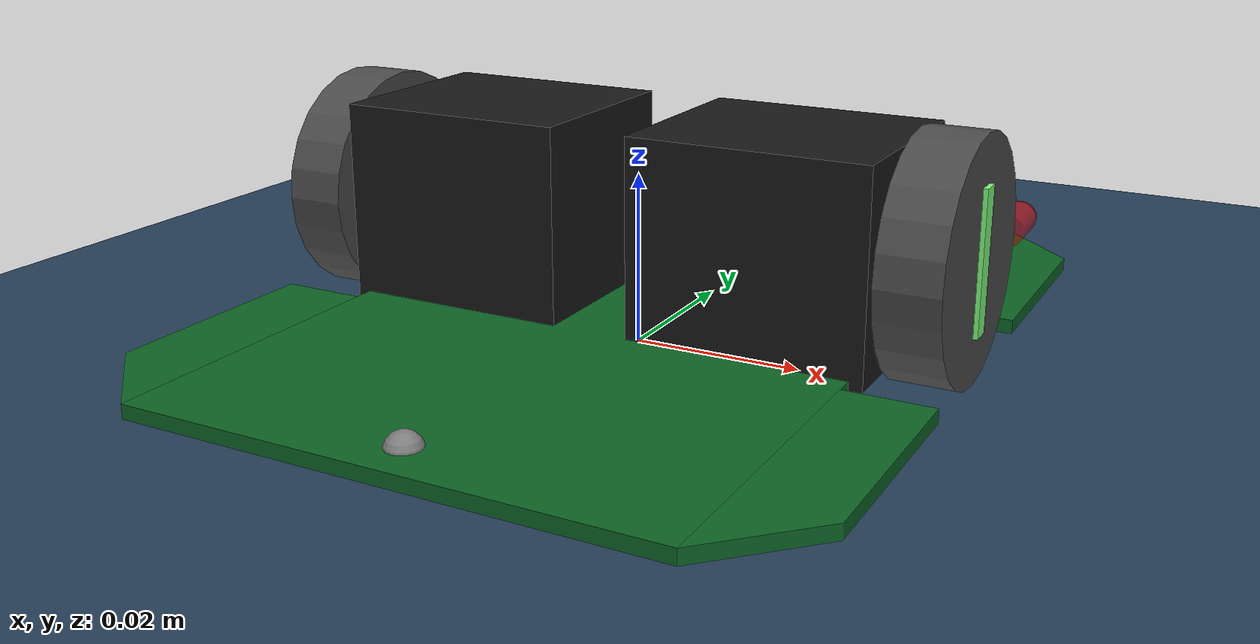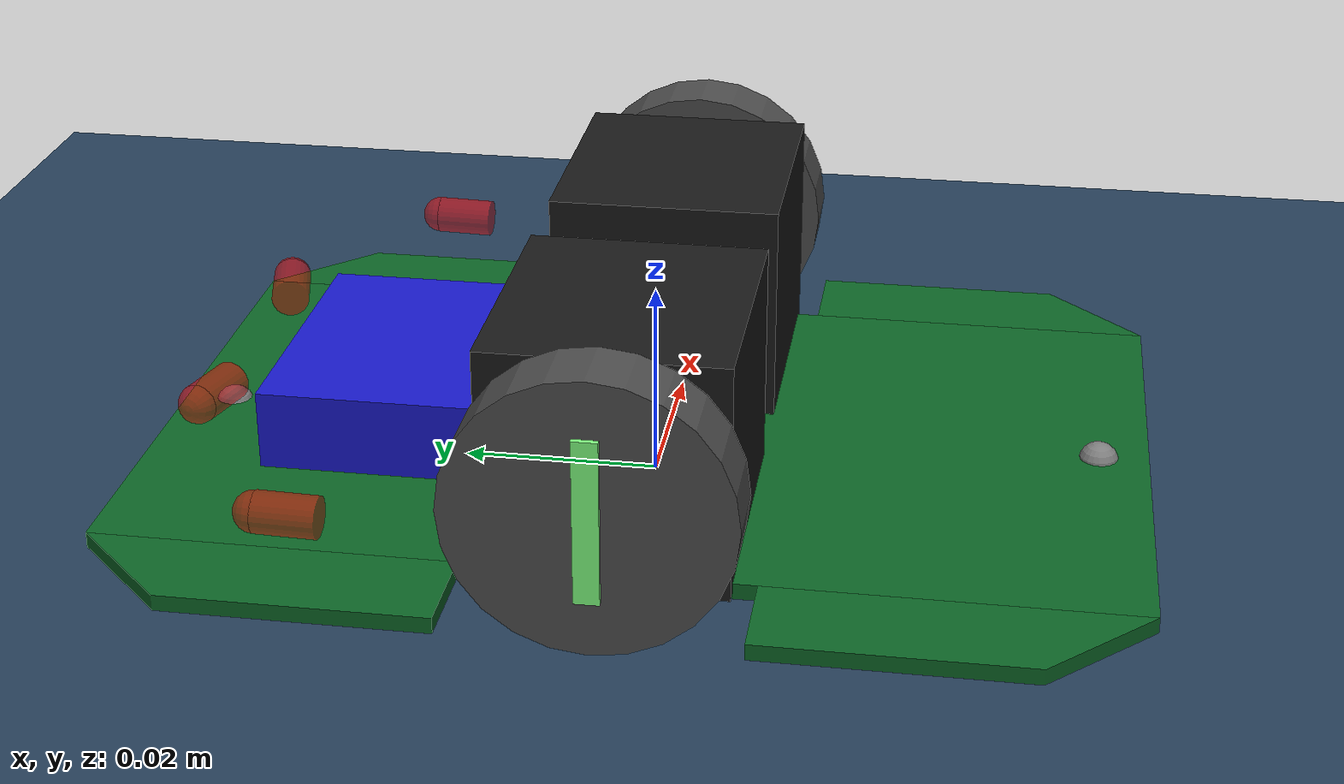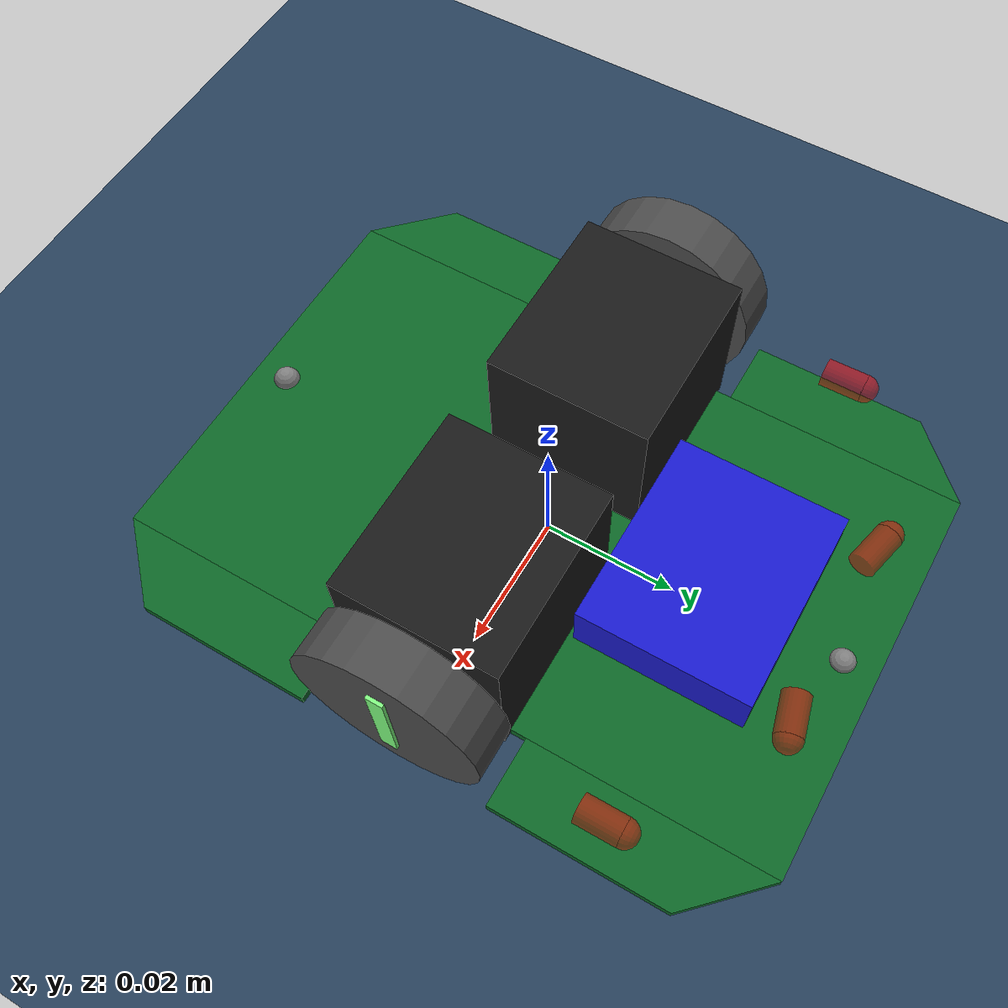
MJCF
<?xml version="1.0" ?>
<mujoco model="micromouse_v2_open">
  <compiler angle="degree" coordinate="local" inertiafromgeom="true"/>
  <option timestep="0.0005" gravity="0 0 -9.81"/>
  <default>
    <geom solref="0.002 1"/>
  </default>
  <visual>
    <global offwidth="800" offheight="800"/>
  </visual>
  <asset>
    <texture name="tex_floor" type="2d" builtin="checker" rgb1=".2 .3 .4" rgb2=".1 .2 .3" width="512" height="512"/>
    <material name="mat_floor" texture="tex_floor" reflectance="0.0" texrepeat="11.11111111111111 11.11111111111111" texuniform="true"/>
    <material name="mat_wall" rgba="1 1 1 1"/>
    <material name="mat_wall_top" rgba="0.8 0 0 1"/>
    <material name="mat_post" rgba="0.9 0.9 0.9 1"/>
    <material name="mat_pcb" rgba="0.1 0.1 0.1 1" specular="0.5" shininess="0.5"/>
    <material name="mat_tire" rgba="0.1 0.1 0.1 1" reflectance="0.1"/>
    <material name="mat_wheel" rgba="0.9 0.9 0.9 1"/>
    <material name="mat_motor" rgba="0.6 0.6 0.6 1" specular="1" shininess="1"/>
    <material name="mat_battery" rgba="0.1 0.1 0.8 1"/>
    <material name="mat_sensor_body" rgba="0.2 0.2 0.2 1"/>
    <material name="mat_led" rgba="0.9 0.9 0.9 0.5"/>
    <mesh name="coner" vertex="0 0 -0.0008  0.036 0 -0.0008  0.026 0.01 -0.0008  0 0.01 -0.0008  0 0 0.0008  0.036 0 0.0008  0.026 0.01 0.0008  0 0.01 0.0008"/>
  </asset>
  <worldbody>
    <geom name="floor" type="plane" material="mat_floor" pos="0 0 0" size="9 9 0.1" friction="1.0 0.005 1e-4"/>
    <light diffuse=".5 .5 .5" pos="0 0 3" dir="0 0 -1"/>
    <body name="mouse" pos="0 0 0.002" euler="0 0 90">
      <freejoint name="root"/>
      <camera name="track" mode="trackcom" pos="0 0 0.8" xyaxes="0 -1 0 1 0 0" fovy="45"/>
      <geom name="mein_body1" type="box" size="0.05 0.03 0.0008" rgba="0.05 0.4 0.15 1" pos="0 0 0.002" friction="0.4 0.005 1e-4" mass="0.03"/>
      <geom name="battery" type="box" size="0.0125 0.015 0.004" pos="0.025 0 0.007" material="mat_battery" mass="0.02"/>
      <geom name="mein_body2" type="mesh" mesh="coner" friction="0.4 0.005 1e-4" rgba="0.05 0.4 0.15 1" pos="0.014 0.03 0.002" mass="0.0015"/>
      <geom name="mein_body3" type="mesh" mesh="coner" friction="0.4 0.005 1e-4" rgba="0.05 0.4 0.15 1" pos="0.014 -0.03 0.002" mass="0.0015" euler="180 0 0"/>
      <geom name="mein_body4" type="mesh" mesh="coner" friction="0.4 0.005 1e-4" rgba="0.05 0.4 0.15 1" pos="-0.014 0.03 0.002" mass="0.0015" euler="0 180 0"/>
      <geom name="mein_body5" type="mesh" mesh="coner" friction="0.4 0.005 1e-4" rgba="0.05 0.4 0.15 1" pos="-0.014 -0.03 0.002" mass="0.0015" euler="180 180 0"/>
      <geom name="caster_front" type="sphere" size="0.002" pos="0.045 0 0.002" rgba="0.5 0.5 0.5 1" friction="0 0 0" mass="0.001"/>
      <geom name="caster_back" type="sphere" size="0.002" pos="-0.045 0 0.0024000000000000002" rgba="0.5 0.5 0.5 1" friction="0 0 0" mass="0.001"/>
      <body name="motorbox1" pos="0 -0.018 0.0135">
        <geom type="box" size="0.0117 0.0135 0.0117" rgba="0.1 0.1 0.1 1" mass="0.018"/>
      </body>
      <body name="motorbox2" pos="0 0.018 0.0135">
        <geom type="box" size="0.0117 0.0135 0.0117" rgba="0.1 0.1 0.1 1" mass="0.018"/>
      </body>
      <body name="left_wheel" pos="0 0.036 0.0135" zaxis="0 1 0">
        <joint name="left_wheel_joint" type="hinge" axis="0 0 1" damping="2e-06" frictionloss="0.00091" armature="1.475e-06"/>
        <geom type="cylinder" size="0.0135 0.0035" rgba="0.3 0.3 0.3 1" friction="1.0 0 0" mass="0.005"/>
        <site type="box" size="0.0012 0.008 0.004" rgba="0.5 1 0.5 1"/>
      </body>
      <body name="right_wheel" pos="0 -0.036 0.0135" zaxis="0 1 0">
        <joint name="right_wheel_joint" type="hinge" axis="0 0 1" damping="2e-06" frictionloss="0.00091" armature="1.475e-06"/>
        <geom type="cylinder" size="0.0135 0.0035" rgba="0.3 0.3 0.3 1" friction="1.0 0 0" mass="0.005"/>
        <site type="box" size="0.0012 0.008 0.004" rgba="0.5 1 0.5 1"/>
      </body>
      <body name="visual_LF" pos="0.031 0.036 0.01" zaxis="1 0 0.026">
        <geom type="cylinder" size="0.002 0.003" pos="0 0 -0.003" rgba="1 0 0 0.5" mass="0.00025"/>
        <geom type="sphere" size="0.002" pos="0 0 0" rgba="1 0 0 0.5" mass="0.00025"/>
        <site name="site_LF" type="box" size="0.001 0.001 0.001" pos="0 0 0.002" rgba="0 0 0 0"/>
      </body>
      <body name="visual_LS" pos="0.043 0.016 0.01" zaxis="0.25 1 0.026">
        <geom type="cylinder" size="0.002 0.003" pos="0 0 -0.003" rgba="1 0 0 0.5" mass="0.00025"/>
        <geom type="sphere" size="0.002" pos="0 0 0" rgba="1 0 0 0.5" mass="0.00025"/>
        <site name="site_LS" type="box" size="0.001 0.001 0.001" pos="0 0 0.002" rgba="0 0 0 0"/>
      </body>
      <body name="visual_RF" pos="0.031 -0.036 0.01" zaxis="1 0 0.026">
        <geom type="cylinder" size="0.002 0.003" pos="0 0 -0.003" rgba="1 0 0 0.5" mass="0.00025"/>
        <geom type="sphere" size="0.002" pos="0 0 0" rgba="1 0 0 0.5" mass="0.00025"/>
        <site name="site_RF" type="box" size="0.001 0.001 0.001" pos="0 0 0.002" rgba="0 0 0 0"/>
      </body>
      <body name="visual_RS" pos="0.043 -0.016 0.01" zaxis="0.25 -1 0.026">
        <geom type="cylinder" size="0.002 0.003" pos="0 0 -0.003" rgba="1 0 0 0.5" mass="0.00025"/>
        <geom type="sphere" size="0.002" pos="0 0 0" rgba="1 0 0 0.5" mass="0.00025"/>
        <site name="site_RS" type="box" size="0.001 0.001 0.001" pos="0 0 0.002" rgba="0 0 0 0"/>
      </body>
      <site name="accerometer" type="box" size="0.001 0.001 0.001" pos="0 0 0.0033"/>
      <site name="gyro" type="box" size="0.001 0.001 0.001" pos="0 0 0.0033"/>
    </body>
  </worldbody>
  <actuator>
    <general name="act_left" joint="left_wheel_joint" gainprm="0.0092523364 0 0" biastype="affine" biasprm="0 0 -9.1598131e-05" ctrllimited="true" ctrlrange="-3 3"/>
    <general name="act_right" joint="right_wheel_joint" gainprm="0.0092523364 0 0" biastype="affine" biasprm="0 0 -9.1598131e-05" ctrllimited="true" ctrlrange="-3 3"/>
  </actuator>
  <sensor>
    <rangefinder name="LF" site="site_LF" cutoff="0.3"/>
    <rangefinder name="LS" site="site_LS" cutoff="0.3"/>
    <rangefinder name="RF" site="site_RF" cutoff="0.3"/>
    <rangefinder name="RS" site="site_RS" cutoff="0.3"/>
    <accelerometer name="Accel" site="accerometer"/>
    <gyro name="Gyro" site="gyro"/>
  </sensor>
  <contact>
    <exclude body1="mouse" body2="left_wheel"/>
    <exclude body1="mouse" body2="right_wheel"/>
    <pair geom1="caster_front" geom2="floor" friction="0.08 0.08 1e-4 1e-4 1e-4"/>
    <pair geom1="caster_back" geom2="floor" friction="0.08 0.08 1e-4 1e-4 1e-4"/>
  </contact>
</mujoco>
